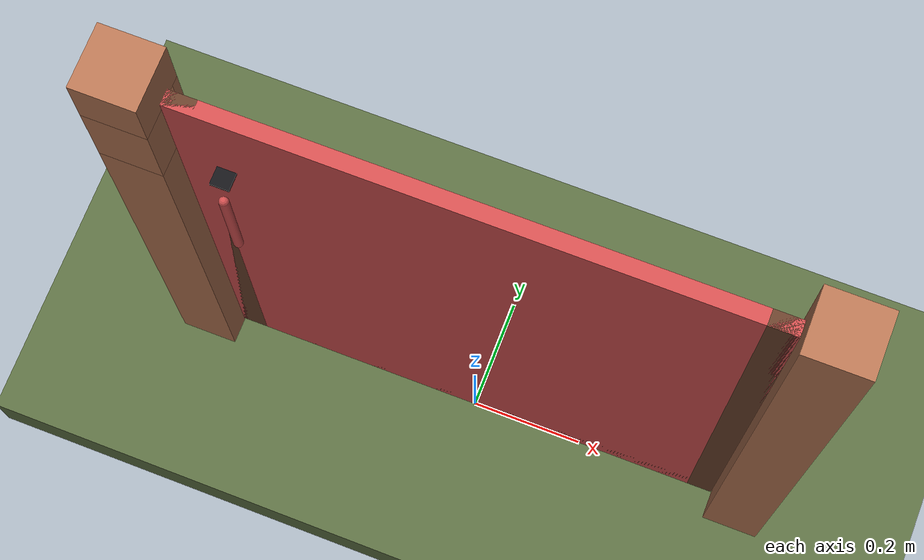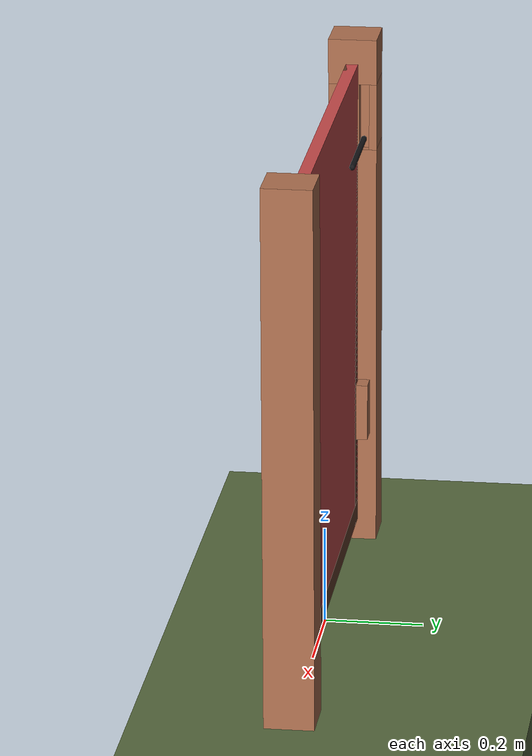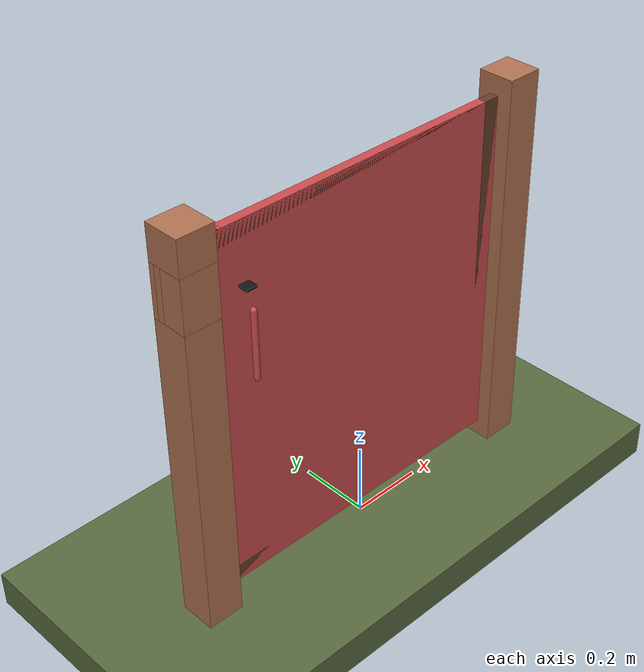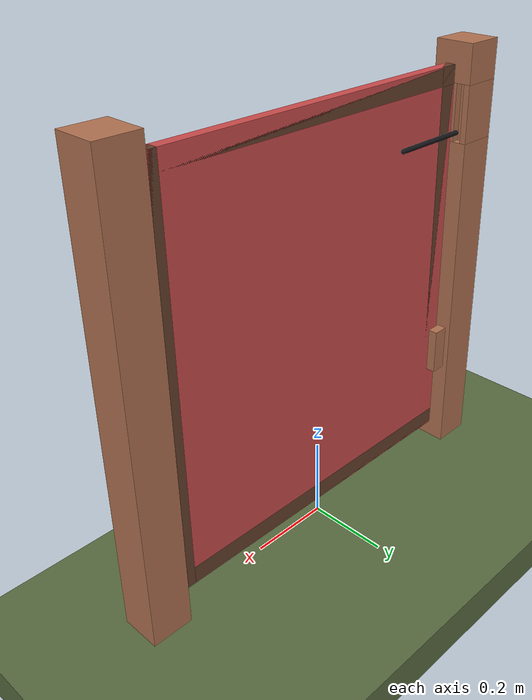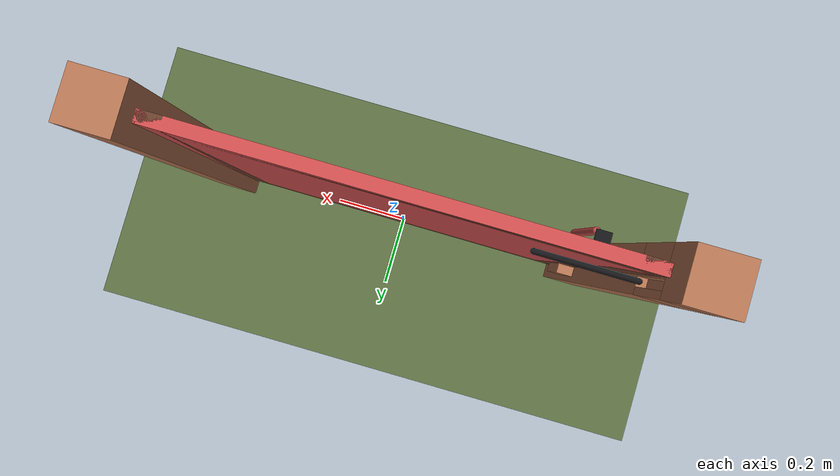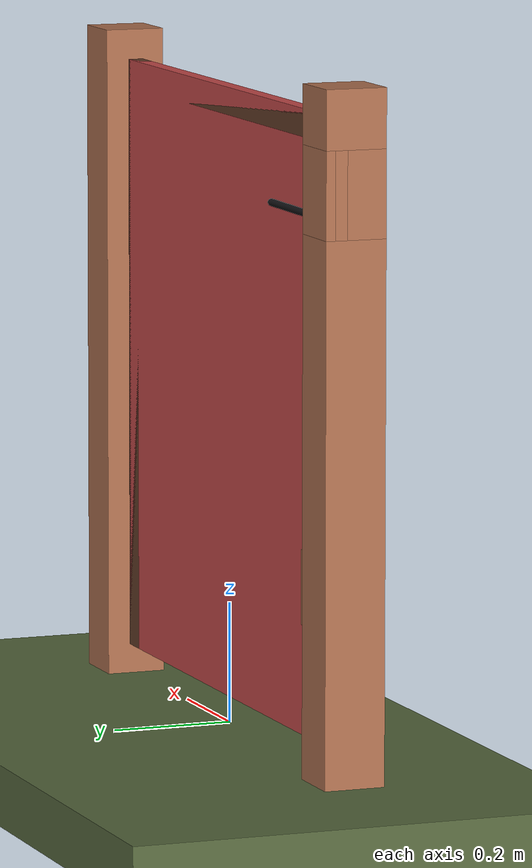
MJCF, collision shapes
<?xml version="1.0" ?>
<mujoco model="db0192_gate_swing_minimal">
  <compiler angle="radian" meshdir="../../hardware" texturedir="../../textures" autolimits="true" inertiafromgeom="false"/>
  <option timestep="0.002" integrator="implicitfast" cone="elliptic" impratio="10" noslip_iterations="3">
    <flag multiccd="enable"/>
  </option>
  <size memory="16M"/>
  <default>
    <geom condim="4" solref="0.005 1" solimp="0.95 0.99 0.001"/>
    <joint solreflimit="0.005 1" solimplimit="0.95 0.99 0.001"/>
    <tendon solreflimit="0.005 1"/>
    <equality solref="0.002 1"/>
  </default>
  <visual>
    <headlight ambient="0.4 0.4 0.4" diffuse="0.7 0.7 0.7" specular="0.2 0.2 0.2"/>
    <quality shadowsize="4096"/>
    <map znear="0.01" zfar="60"/>
  </visual>
  <asset>
    <mesh name="thumb_latch_0073ea78ed" file="thumb_latch_0073ea78ed.obj"/>
    <material name="mat_floor" rgba="0.35 0.42 0.25 1" specular="0.2" shininess="0.15" reflectance="0"/>
    <material name="mat_wall" rgba="0.78 0.76 0.7 1" specular="0.2" shininess="0.1" reflectance="0"/>
    <material name="mat_leaf" rgba="0.398 0.243 0.164 1" specular="0.2" shininess="0.4" reflectance="0"/>
    <material name="mat_hinge" rgba="0.65 0.66 0.68 1" specular="0.74" shininess="0.5" reflectance="0.36"/>
    <material name="mat_op_wrought_iron" rgba="0.08 0.08 0.09 1" specular="0.56" shininess="0.25" reflectance="0.24"/>
    <material name="mat_frame" rgba="0.7 0.45 0.32 1" specular="0.2" shininess="0.4" reflectance="0"/>
    <material name="mat_fence" rgba="0.7 0.45 0.32 1" specular="0.2" shininess="0.4" reflectance="0"/>
    <texture name="skybox" type="skybox" builtin="gradient" rgb1="0.6 0.7 0.85" rgb2="0.9 0.92 0.95" width="256" height="256"/>
  </asset>
  <worldbody>
    <light name="sun" pos="1.5 -2.5 4" dir="-0.3 0.5 -0.8" directional="true" diffuse="0.8 0.8 0.8" specular="0.3 0.3 0.3" castshadow="true"/>
    <light name="fill" pos="-1.5 2.5 3" dir="0.3 -0.5 -0.7" directional="true" diffuse="0.35 0.35 0.4" castshadow="false"/>
    <camera name="robot_view" pos="0 -1.875 1.035" xyaxes="1 0 0 0 0.26963 0.962964" fovy="52"/>
    <camera name="far_view" pos="0 1.875 1.035" xyaxes="-1 0 0 0 -0.26963 0.962964" fovy="52"/>
    <camera name="iso" pos="-1.425 -1.575 1.335" xyaxes="0.741536 -0.670913 0 0.242917 0.268487 0.932151" fovy="46"/>
    <camera name="detail_handle" pos="-0.187 -0.8475 1.03" xyaxes="0.97561 0.219512 0 -0.070934 0.315262 0.94635" fovy="38"/>
    <geom name="floor" type="box" size="6 6 0.05" pos="0 0 -0.05" material="mat_floor" group="0" contype="1" conaffinity="1" friction="0.8 0.005 0.0001" density="2400"/>
    <geom name="post_hinge" type="box" size="0.05 0.05 0.55" pos="0.506 0 0.55" material="mat_frame" group="0" contype="1" conaffinity="1" friction="0.6 0.005 0.0001" density="350"/>
    <geom name="post_935_wall_n" type="box" size="0.05 0.00775 0.07" pos="-0.506 0.04225 0.935" material="mat_frame" group="0" contype="1" conaffinity="1" friction="0.6 0.005 0.0001" density="350"/>
    <geom name="post_935_wall_p" type="box" size="0.05 0.03225 0.07" pos="-0.506 -0.01775 0.935" material="mat_frame" group="0" contype="1" conaffinity="1" friction="0.6 0.005 0.0001" density="350"/>
    <geom name="post_935_back" type="box" size="0.04 0.01 0.07" pos="-0.516 0.0245 0.935" material="mat_frame" group="0" contype="1" conaffinity="1" friction="0.6 0.005 0.0001" density="350"/>
    <geom name="post_latch_0" type="box" size="0.05 0.05 0.4325" pos="-0.506 0 0.4325" material="mat_frame" group="0" contype="1" conaffinity="1" friction="0.6 0.005 0.0001" density="350"/>
    <geom name="post_latch_1" type="box" size="0.05 0.05 0.0475" pos="-0.506 0 1.0525" material="mat_frame" group="0" contype="1" conaffinity="1" friction="0.6 0.005 0.0001" density="350"/>
    <geom name="gate_stop" type="box" size="0.02 0.012 0.06" pos="-0.436 0.0245 0.3" material="mat_frame" group="0" contype="1" conaffinity="1" friction="0.6 0.005 0.0001" density="350"/>
    <site name="approach_point" pos="0 -1.5 0" quat="1 0 0 0" size="0.05" rgba="0.2 0.9 0.2 0.5" group="4"/>
    <site name="goal_point" pos="0 1.5 0" quat="1 0 0 0" size="0.05" rgba="0.2 0.9 0.2 0.5" group="4"/>
    <site name="door_plane_center" pos="0 0 0.51" quat="1 0 0 0" size="0.02" rgba="0.2 0.9 0.2 0.5" group="4"/>
    <body name="leaf" pos="0.456 0 0">
      <inertial pos="-0.48706 -0.002979 0.568411" mass="8.855048" quat="-0.354419 0.344232 0.615316 0.61423" diaginertia="0.613028098 0.737708543 1.348259646"/>
      <joint name="leaf_hinge" type="hinge" axis="0 0 1" pos="-0.003 -0.05 0" limited="true" range="0 1.745329" damping="0.168492" frictionloss="4.208959" armature="0.02"/>
      <geom name="leaf_slab_col" type="box" size="0.45 0.0125 0.5" pos="-0.453 0 0.55" material="mat_leaf" group="3" contype="1" conaffinity="1" rgba="0.8 0.3 0.3 0.25" friction="0.35 0.005 0.0001" density="1"/>
      <geom name="leaf_rail_b" type="box" size="0.45 0.0125 0.0225" pos="-0.453 0 0.0725" material="mat_leaf" group="1" contype="0" conaffinity="0" density="1"/>
      <geom name="leaf_rail_t" type="box" size="0.45 0.0125 0.0225" pos="-0.453 0 1.0275" material="mat_leaf" group="1" contype="0" conaffinity="0" density="1"/>
      <geom name="leaf_stile_h" type="box" size="0.0225 0.0125 0.5" pos="-0.0255 0 0.55" material="mat_leaf" group="1" contype="0" conaffinity="0" density="1"/>
      <geom name="leaf_stile_l" type="box" size="0.0225 0.0125 0.5" pos="-0.8805 0 0.55" material="mat_leaf" group="1" contype="0" conaffinity="0" density="1"/>
      <geom name="leaf_suffolk_grip" type="mesh" mesh="thumb_latch_0073ea78ed" pos="-0.823 -0.0125 0.75" quat="0 0 -0.707107 0.707107" material="mat_op_wrought_iron" group="1" contype="0" conaffinity="0" density="7000"/>
      <geom name="leaf_suffolk_grip_col" type="capsule" size="0.008 0.09" pos="-0.823 -0.0475 0.75" material="mat_op_wrought_iron" group="3" contype="1" conaffinity="1" rgba="0.8 0.3 0.3 0.25" friction="0.7 0.01 0.0001" density="7000"/>
      <site name="leaf_grip_n" pos="-0.823 -0.0475 0.75" quat="1 0 0 0" size="0.012" rgba="0.2 0.9 0.2 0.5" group="4"/>
      <site name="leaf_edge_mid" pos="-0.903 0 0.5" quat="1 0 0 0" size="0.02" rgba="0.2 0.9 0.2 0.5" group="4"/>
      <body name="leaf_thumb" pos="-0.823 -0.0125 0.895">
        <inertial pos="0 -0.02 0" mass="0.03528" quat="1 0 0 0" diaginertia="0.000002411 0.000002752 0.000004951"/>
        <joint name="leaf_thumb_hinge" type="hinge" axis="1 0 0" limited="true" range="0 0.3" damping="0.155195" frictionloss="0.032" stiffness="0.6" springref="-0.5" armature="0.01"/>
        <geom name="leaf_thumb_geom" type="box" size="0.015 0.014 0.003" pos="0 -0.02 0" material="mat_op_wrought_iron" group="0" contype="1" conaffinity="1" friction="0.6 0.005 0.0001" density="7000"/>
        <site name="leaf_thumb_push" pos="0 -0.024 0.005" quat="1 0 0 0" size="0.01" rgba="0.2 0.9 0.2 0.5" group="4"/>
      </body>
      <body name="leaf_latch_bar" pos="-0.703 0.0245 0.89">
        <inertial pos="-0.106 0 0" mass="0.25" quat="0 0 -0.707107 0.707107" diaginertia="0.000004465 0.000904065 0.000904065"/>
        <joint name="leaf_latch_bar_hinge" type="hinge" axis="0 1 0" limited="true" range="0 0.6" damping="0.01" frictionloss="0.01" armature="0.005"/>
        <geom name="leaf_latch_bar_geom" type="capsule" size="0.006 0.1" pos="-0.106 0 0" quat="0.707107 0 -0.707107 0" material="mat_op_wrought_iron" group="0" contype="1" conaffinity="1" friction="0.6 0.005 0.0001" density="7850"/>
      </body>
    </body>
  </worldbody>
  <equality>
    <joint name="leaf_thumb_couple" joint1="leaf_latch_bar_hinge" joint2="leaf_thumb_hinge" polycoef="0 2 0 0 0" active="true"/>
  </equality>
  <sensor>
    <jointpos name="leaf_hinge_pos" joint="leaf_hinge"/>
    <jointvel name="leaf_hinge_vel" joint="leaf_hinge"/>
    <jointpos name="leaf_thumb_hinge_pos" joint="leaf_thumb_hinge"/>
    <jointvel name="leaf_thumb_hinge_vel" joint="leaf_thumb_hinge"/>
    <jointpos name="leaf_latch_bar_hinge_pos" joint="leaf_latch_bar_hinge"/>
    <jointvel name="leaf_latch_bar_hinge_vel" joint="leaf_latch_bar_hinge"/>
  </sensor>
</mujoco>
